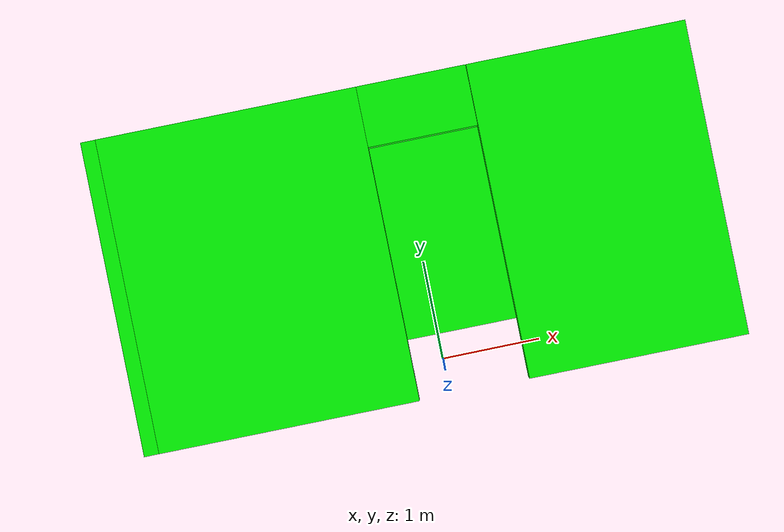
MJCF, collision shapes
<mujoco model="Wall_ad20b7dd">
  <compiler autolimits="true" boundmass="0.01" angle="radian"/>
  <default>
    <default class="/">
      <default class="__VISUAL_MJT__">
        <geom contype="0" conaffinity="0" group="0" mass="1e-08"/>
      </default>
      <default class="__STRUCTURAL_MJT__">
        <geom contype="8" conaffinity="15" group="4" friction="0.90000000000000002 0.90000000000000002 0.001" density="500" solref="0.025000000000000001 1" solimp="0.998 0.998 0.001"/>
      </default>
      <default class="__DYNAMIC_MJT__">
        <geom contype="1" conaffinity="15" group="4" friction="0.90000000000000002 0.90000000000000002 0.001" density="500" solref="0.025000000000000001 1" solimp="0.998 0.998 0.001"/>
      </default>
      <default class="__ARTICULABLE_DYNAMIC_MJT__">
        <geom contype="0" conaffinity="7" group="4" friction="0.90000000000000002 0.90000000000000002 0.001" density="500" solref="0.025000000000000001 1" solimp="0.998 0.998 0.001"/>
      </default>
    </default>
  </default>
  <asset>
    <material name="material_WhiteWood1" class="/" specular="0.5" shininess="0.5" rgba="1 1 1 1"/>
    <texture name="YellowDrywall" type="2d" file="WallDrywallWhite.png"/>
    <material name="material_YellowDrywall" class="/" texture="YellowDrywall" specular="0.5" shininess="0.5" rgba="1 0.77105250000000003 0.36029410000000001 1"/>
    <mesh name="Wall_ad20b7dd_Wall_ad20b7dd_0" class="/" file="Wall_ad20b7dd_Wall_ad20b7dd/Wall_ad20b7dd_Wall_ad20b7dd_0.obj" scale="1 1 1" inertia="shell"/>
    <mesh name="Wall_ad20b7dd_Wall_ad20b7dd_1" class="/" file="Wall_ad20b7dd_Wall_ad20b7dd/Wall_ad20b7dd_Wall_ad20b7dd_1.obj" scale="1 1 1" inertia="legacy"/>
  </asset>
  <worldbody>
    <body name="Wall_ad20b7dd">
      <body name="Wall_ad20b7dd_Wall_ad20b7dd" pos="-0 0 0" quat="1 0 0 0">
        <geom name="Wall_ad20b7dd_Wall_ad20b7dd_0" class="__VISUAL_MJT__" type="mesh" material="material_WhiteWood1" mesh="Wall_ad20b7dd_Wall_ad20b7dd_0"/>
        <geom name="Wall_ad20b7dd_Wall_ad20b7dd_1" class="__VISUAL_MJT__" type="mesh" material="material_YellowDrywall" mesh="Wall_ad20b7dd_Wall_ad20b7dd_1"/>
        <geom name="Wall_ad20b7dd_Wall_ad20b7dd_PrimitiveCollider_0" class="__DYNAMIC_MJT__" type="box" size="0.058926820755004883 1.2556371688842773 1.4436917304992676" rgba="0 1 0 1" pos="-2.3834192752838135 1.2548363208770752 -1.4539922475814819" quat="0 1 0 0"/>
        <geom name="Wall_ad20b7dd_Wall_ad20b7dd_PrimitiveCollider_1" class="__DYNAMIC_MJT__" type="box" size="0.058926820755004883 0.29722785949707031 0.43272072076797485" rgba="0 1 0 1" pos="-2.3834192752838135 2.2132458686828613 0.40156158804893494" quat="0 1 0 0"/>
        <geom name="Wall_ad20b7dd_Wall_ad20b7dd_PrimitiveCollider_2" class="__DYNAMIC_MJT__" type="box" size="0.058926820755004883 1.2556371688842773 0.84405887126922607" rgba="0 1 0 1" pos="-2.3834192752838135 1.2548363208770752 1.6576406955718994" quat="0 1 0 0"/>
        <geom name="Wall_ad20b7dd_Wall_ad20b7dd_PrimitiveCollider_3" class="__DYNAMIC_MJT__" type="box" size="1.1010087728500366 1.2556371688842773 0.05351412296295166" rgba="0 1 0 1" pos="-1.3413373231887817 1.2548363208770752 2.4481854438781738" quat="0 1 0 0"/>
        <geom name="Wall_ad20b7dd_Wall_ad20b7dd_PrimitiveCollider_4" class="__DYNAMIC_MJT__" type="box" size="0.44097900390625 0.2423100471496582 0.05351412296295166" rgba="0 1 0 1" pos="0.19591188430786133 2.2681632041931152 2.4481854438781738" quat="0 1 0 0"/>
        <geom name="Wall_ad20b7dd_Wall_ad20b7dd_PrimitiveCollider_5" class="__DYNAMIC_MJT__" type="box" size="0.87643283605575562 1.2556371688842773 0.05351412296295166" rgba="0 1 0 1" pos="1.5162384510040283 1.2548363208770752 2.4481854438781738" quat="0 1 0 0"/>
        <geom name="Wall_ad20b7dd_Wall_ad20b7dd_PrimitiveCollider_6" class="__DYNAMIC_MJT__" type="box" size="0.095880031585693359 1.2556371688842773 0.46421408653259277" rgba="0 1 0 1" pos="2.2967910766601562 1.2548363208770752 2.0374855995178223" quat="0 1 0 0"/>
        <geom name="Wall_ad20b7dd_Wall_ad20b7dd_PrimitiveCollider_7" class="__DYNAMIC_MJT__" type="box" size="0.095880031585693359 0.19334542751312256 0.54199200868606567" rgba="0 1 0 1" pos="2.2967910766601562 2.3171277046203613 1.0424853563308716" quat="0 1 0 0"/>
        <geom name="Wall_ad20b7dd_Wall_ad20b7dd_PrimitiveCollider_8" class="__DYNAMIC_MJT__" type="box" size="0.085004091262817383 1.0630099773406982 0.54199200868606567" rgba="0 1 0 1" pos="2.423914909362793 1.0622091293334961 1.042485237121582" quat="0 1 0 0"/>
        <geom name="Wall_ad20b7dd_Wall_ad20b7dd_PrimitiveCollider_9" class="__DYNAMIC_MJT__" type="box" size="0.095880031585693359 1.2556371688842773 0.46421408653259277" rgba="0 1 0 1" pos="2.2967910766601562 1.2548363208770752 0.050485402345657349" quat="0 1 0 0"/>
        <geom name="Wall_ad20b7dd_Wall_ad20b7dd_PrimitiveCollider_10" class="__DYNAMIC_MJT__" type="box" size="0.095880031585693359 0.19636225700378418 0.8116755485534668" rgba="0 1 0 1" pos="2.2967910766601562 2.3141114711761475 -1.202039361000061" quat="0 1 0 0"/>
        <geom name="Wall_ad20b7dd_Wall_ad20b7dd_PrimitiveCollider_11" class="__DYNAMIC_MJT__" type="box" size="0.095880031585693359 0.44214880466461182 0.8116755485534668" rgba="0 1 0 1" pos="2.2967910766601562 0.44134795665740967 -1.202039361000061" quat="0 1 0 0"/>
        <geom name="Wall_ad20b7dd_Wall_ad20b7dd_PrimitiveCollider_12" class="__DYNAMIC_MJT__" type="box" size="0.095880031585693359 1.2556371688842773 0.45233571529388428" rgba="0 1 0 1" pos="2.2967910766601562 1.2548363208770752 -2.4493927955627441" quat="0 1 0 0"/>
        <geom name="Wall_ad20b7dd_Wall_ad20b7dd_PrimitiveCollider_13" class="__DYNAMIC_MJT__" type="box" size="2.4148421287536621 1.2556371688842773 0.056403517723083496" rgba="0 1 0 1" pos="-0.0221710205078125 1.2548363208770752 -2.8453249931335449" quat="0 1 0 0"/>
        <geom name="Wall_ad20b7dd_Wall_ad20b7dd_PrimitiveCollider_14" class="__DYNAMIC_MJT__" type="box" size="0.095880031585693359 0.022939205169677734 0.54199200868606567" rgba="0 1 0 1" pos="2.2967910766601562 0.021721363067626953 1.0424853563308716" quat="0 1 0 0"/>
      </body>
    </body>
  </worldbody>
</mujoco>
